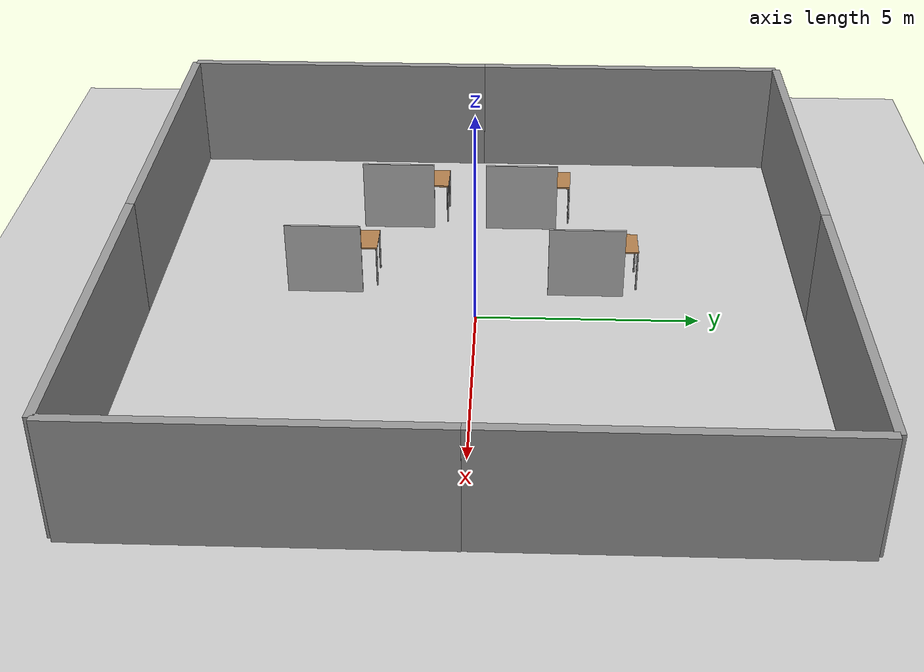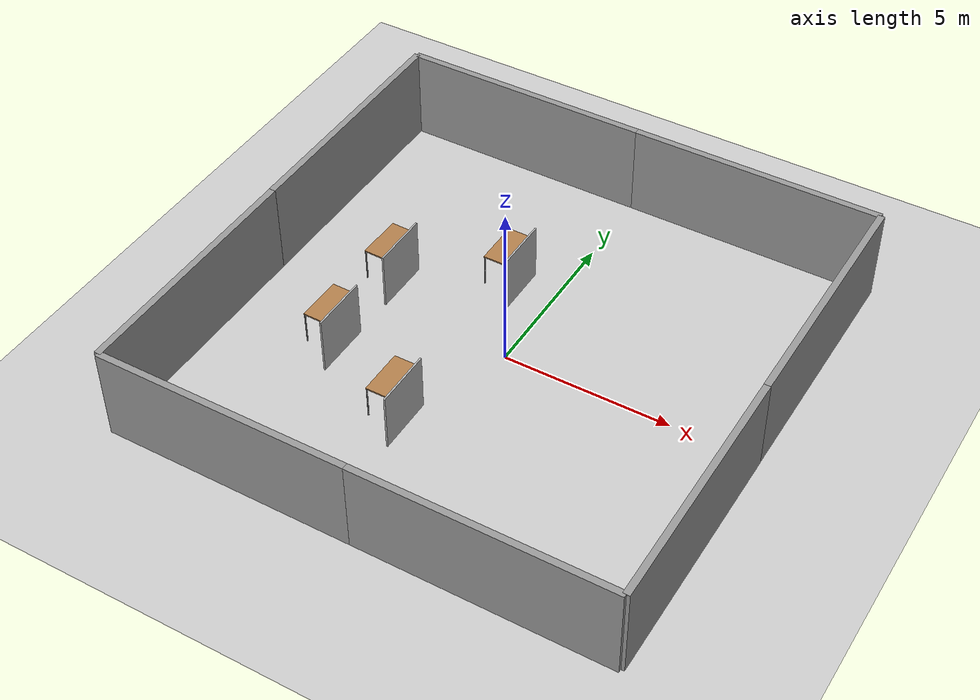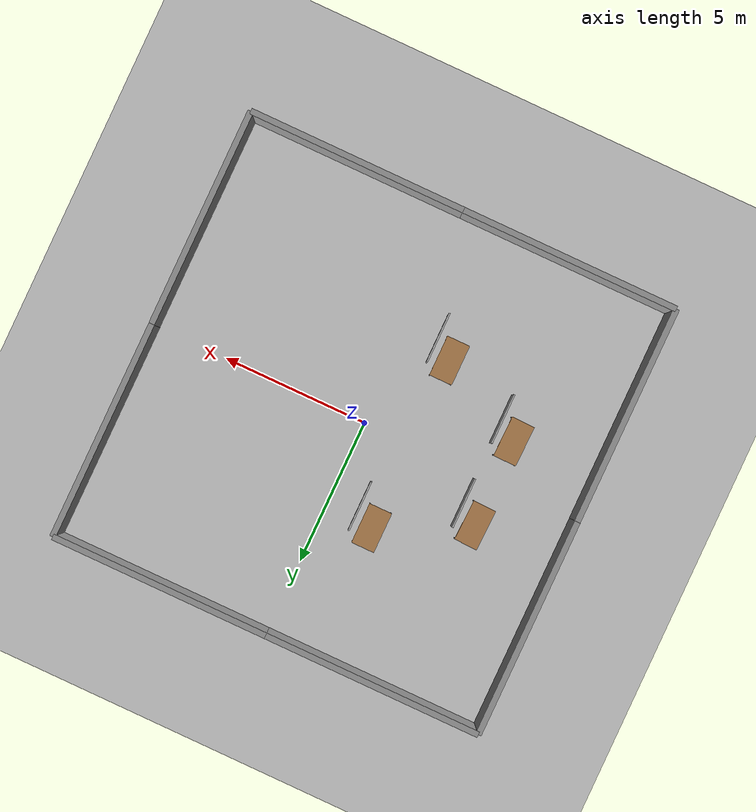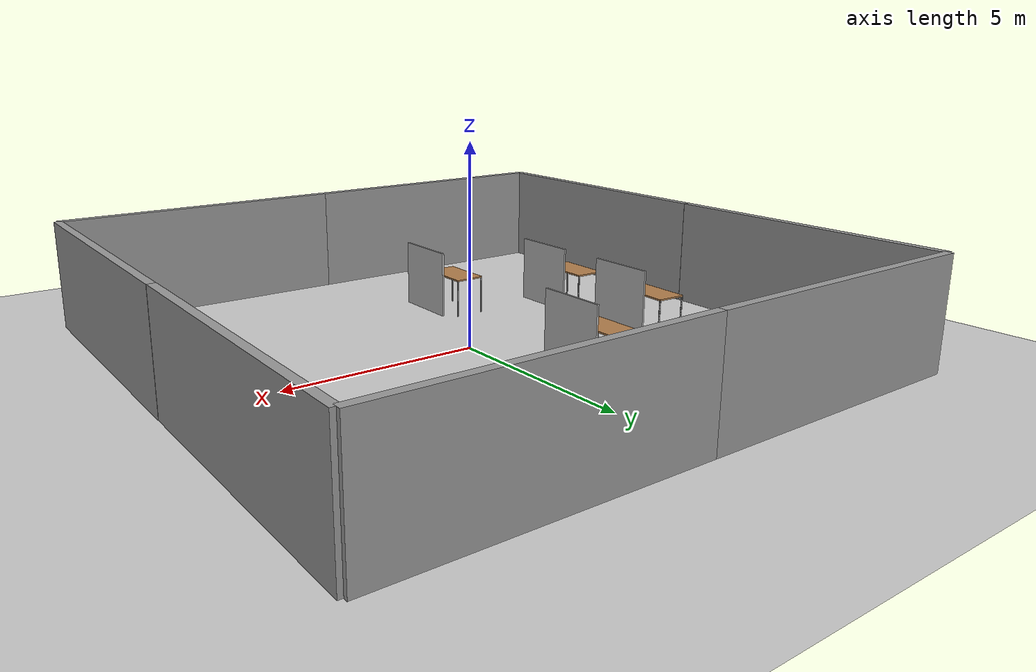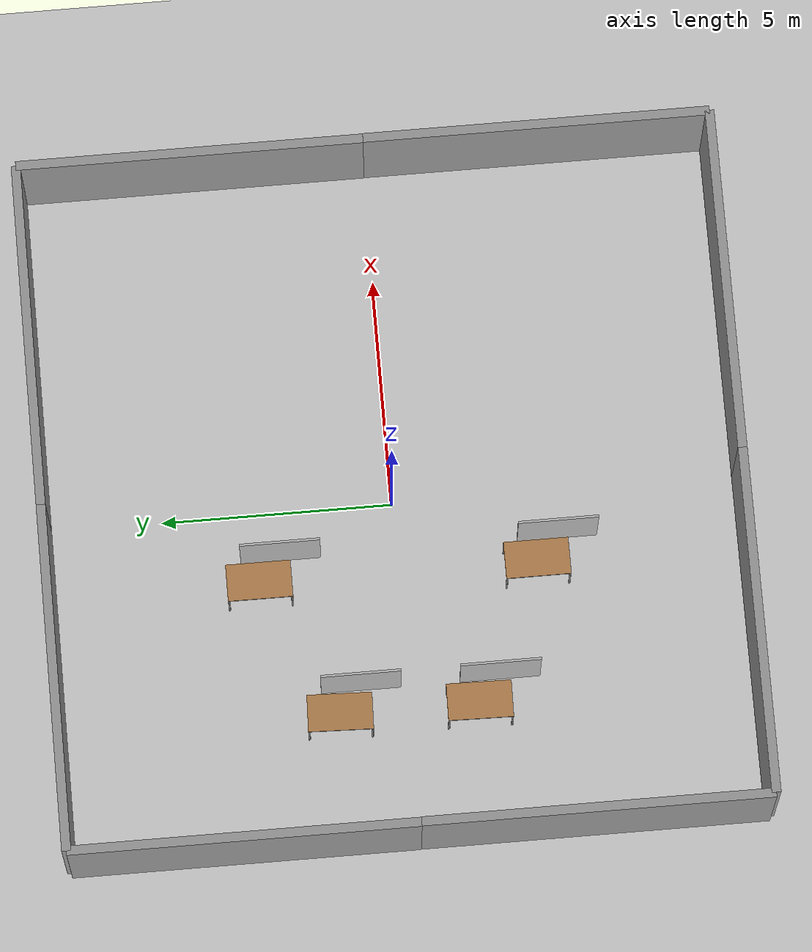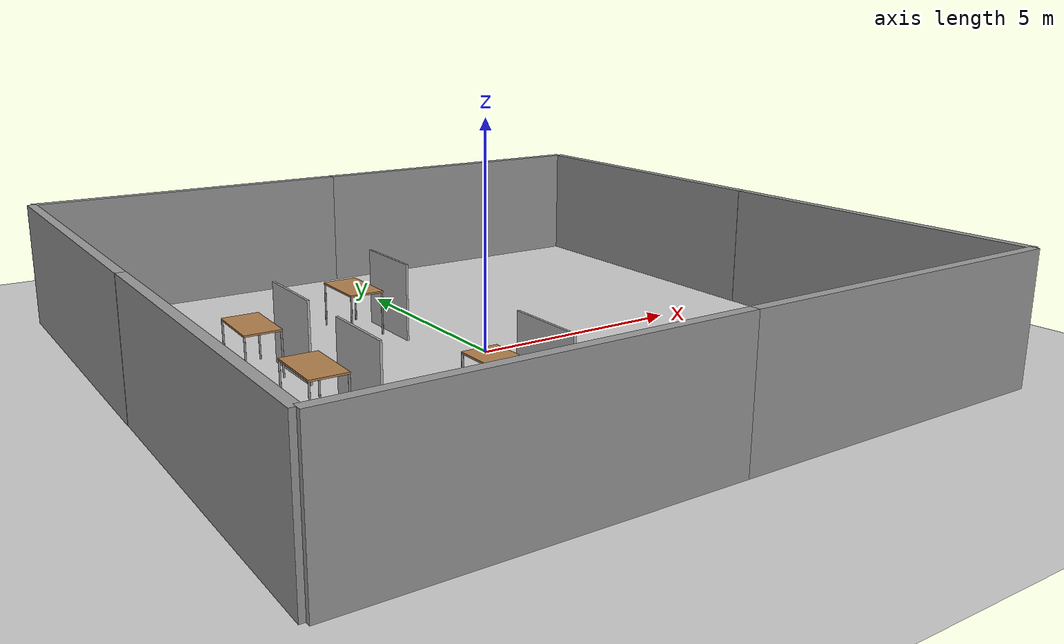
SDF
<sdf version="1.6">
 <world name="default">
  <light name="sun" type="directional">
   <pose>0 0 10 0 -0 0</pose>
   <diffuse>0.8 0.8 0.8 1</diffuse>
   <specular>0.1 0.1 0.1 1</specular>
   <attenuation>
    <range>1000</range>
    <constant>0.9</constant>
    <linear>0.01</linear>
    <quadratic>0.001</quadratic>
   </attenuation>
   <direction>-0.5 0.5 -1</direction>
  </light>
  <model name="ground_plane">
   <static>1</static>
   <link name="link">
    <collision name="collision">
     <geometry><plane><normal>0 0 1</normal><size>100 100</size></plane></geometry>
     <surface><friction><ode><mu>100</mu><mu2>50</mu2></ode></friction></surface>
    </collision>
    <visual name="visual">
     <cast_shadows>0</cast_shadows>
     <geometry><plane><normal>0 0 1</normal><size>100 100</size></plane></geometry>
     <material>
      <script><uri>file://media/materials/scripts/gazebo.material</uri><name>Gazebo/Grey</name></script>
     </material>
    </visual>
   </link>
  </model>
  <gravity>0 0 -9.8</gravity>
  <magnetic_field>6e-06 2.3e-05 -4.2e-05</magnetic_field>
  <atmosphere type="adiabatic"/>
  <physics name="default_physics" default="0" type="ode">
   <max_step_size>0.001</max_step_size>
   <real_time_factor>1</real_time_factor>
   <real_time_update_rate>1000</real_time_update_rate>
  </physics>
  <scene><ambient>0.4 0.4 0.4 1</ambient><background>0.7 0.7 0.7 1</background><shadows>1</shadows></scene>
  <spherical_coordinates>
   <surface_model>EARTH_WGS84</surface_model>
   <latitude_deg>0</latitude_deg>
   <longitude_deg>0</longitude_deg>
   <elevation>0</elevation>
   <heading_deg>0</heading_deg>
  </spherical_coordinates>
  <model name="grey_wall">
   <static>1</static>
   <link name="link">
    <pose>0 0 1.4 0 -0 0</pose>
    <collision name="collision"><geometry><box><size>7.5 0.2 2.8</size></box></geometry></collision>
    <visual name="visual">
     <cast_shadows>0</cast_shadows>
     <geometry><box><size>7.5 0.2 2.8</size></box></geometry>
     <material>
      <script>
       <uri>model://grey_wall/materials/scripts</uri>
       <uri>model://grey_wall/materials/textures</uri>
       <name>vrc/grey_wall</name>
      </script>
     </material>
    </visual>
   </link>
   <pose>3.75 7.5 0 0 -0 0</pose>
  </model>
  <model name="grey_wall_0">
   <static>1</static>
   <link name="link">
    <pose>0 0 1.4 0 -0 0</pose>
    <collision name="collision"><geometry><box><size>7.5 0.2 2.8</size></box></geometry></collision>
    <visual name="visual">
     <cast_shadows>0</cast_shadows>
     <geometry><box><size>7.5 0.2 2.8</size></box></geometry>
     <material>
      <script>
       <uri>model://grey_wall/materials/scripts</uri>
       <uri>model://grey_wall/materials/textures</uri>
       <name>vrc/grey_wall</name>
      </script>
     </material>
    </visual>
   </link>
   <pose>-3.75 7.5 0 0 -0 0</pose>
  </model>
  <model name="grey_wall_2">
   <static>1</static>
   <link name="link">
    <pose>0 0 1.4 0 -0 0</pose>
    <collision name="collision"><geometry><box><size>7.5 0.2 2.8</size></box></geometry></collision>
    <visual name="visual">
     <cast_shadows>0</cast_shadows>
     <geometry><box><size>7.5 0.2 2.8</size></box></geometry>
     <material>
      <script>
       <uri>model://grey_wall/materials/scripts</uri>
       <uri>model://grey_wall/materials/textures</uri>
       <name>vrc/grey_wall</name>
      </script>
     </material>
    </visual>
   </link>
   <pose>-3.75 -7.5 0 0 -0 0</pose>
  </model>
  <model name="grey_wall_3">
   <static>1</static>
   <link name="link">
    <pose>0 0 1.4 0 -0 0</pose>
    <collision name="collision"><geometry><box><size>7.5 0.2 2.8</size></box></geometry></collision>
    <visual name="visual">
     <cast_shadows>0</cast_shadows>
     <geometry><box><size>7.5 0.2 2.8</size></box></geometry>
     <material>
      <script>
       <uri>model://grey_wall/materials/scripts</uri>
       <uri>model://grey_wall/materials/textures</uri>
       <name>vrc/grey_wall</name>
      </script>
     </material>
    </visual>
   </link>
   <pose>3.75 -7.5 0 0 -0 0</pose>
  </model>
  <model name="grey_wall_4">
   <static>1</static>
   <link name="link">
    <pose>0 0 1.4 0 -0 0</pose>
    <collision name="collision"><geometry><box><size>7.5 0.2 2.8</size></box></geometry></collision>
    <visual name="visual">
     <cast_shadows>0</cast_shadows>
     <geometry><box><size>7.5 0.2 2.8</size></box></geometry>
     <material>
      <script>
       <uri>model://grey_wall/materials/scripts</uri>
       <uri>model://grey_wall/materials/textures</uri>
       <name>vrc/grey_wall</name>
      </script>
     </material>
    </visual>
   </link>
   <pose>-7.5 -3.75 0 0 -0 1.57</pose>
  </model>
  <model name="grey_wall_5">
   <static>1</static>
   <link name="link">
    <pose>0 0 1.4 0 -0 0</pose>
    <collision name="collision"><geometry><box><size>7.5 0.2 2.8</size></box></geometry></collision>
    <visual name="visual">
     <cast_shadows>0</cast_shadows>
     <geometry><box><size>7.5 0.2 2.8</size></box></geometry>
     <material>
      <script>
       <uri>model://grey_wall/materials/scripts</uri>
       <uri>model://grey_wall/materials/textures</uri>
       <name>vrc/grey_wall</name>
      </script>
     </material>
    </visual>
   </link>
   <pose>-7.5 3.75 0 0 -0 1.57</pose>
  </model>
  <model name="grey_wall_6">
   <static>1</static>
   <link name="link">
    <pose>0 0 1.4 0 -0 0</pose>
    <collision name="collision"><geometry><box><size>7.5 0.2 2.8</size></box></geometry></collision>
    <visual name="visual">
     <cast_shadows>0</cast_shadows>
     <geometry><box><size>7.5 0.2 2.8</size></box></geometry>
     <material>
      <script>
       <uri>model://grey_wall/materials/scripts</uri>
       <uri>model://grey_wall/materials/textures</uri>
       <name>vrc/grey_wall</name>
      </script>
     </material>
    </visual>
   </link>
   <pose>7.5 -3.75 0 0 -0 1.57</pose>
  </model>
  <model name="grey_wall_8">
   <static>1</static>
   <link name="link">
    <pose>0 0 1.4 0 -0 0</pose>
    <collision name="collision"><geometry><box><size>7.5 0.2 2.8</size></box></geometry></collision>
    <visual name="visual">
     <cast_shadows>0</cast_shadows>
     <geometry><box><size>7.5 0.2 2.8</size></box></geometry>
     <material>
      <script>
       <uri>model://grey_wall/materials/scripts</uri>
       <uri>model://grey_wall/materials/textures</uri>
       <name>vrc/grey_wall</name>
      </script>
     </material>
    </visual>
   </link>
   <pose>7.5 3.75 0 0 -0 1.57</pose>
  </model>
  <model name="table">
   <static>0</static>
   <link name="link">
    <collision name="surface">
     <pose>0 0 1 0 -0 0</pose>
     <geometry><box><size>1.5 0.8 0.03</size></box></geometry>
     <surface><friction><ode><mu>0.6</mu><mu2>0.6</mu2></ode></friction></surface>
    </collision>
    <visual name="visual1">
     <pose>0 0 1 0 -0 0</pose>
     <geometry><box><size>1.4 0.8 0.04</size></box></geometry>
     <material>
      <script><uri>file://media/materials/scripts/gazebo.material</uri><name>Gazebo/Wood</name></script>
     </material>
    </visual>
    <collision name="front_left_leg">
     <pose>0.68 0.38 0.5 0 -0 0</pose>
     <geometry><cylinder><radius>0.02</radius><length>1</length></cylinder></geometry>
    </collision>
    <visual name="front_left_leg">
     <pose>0.68 0.38 0.5 0 -0 0</pose>
     <geometry><cylinder><radius>0.02</radius><length>1</length></cylinder></geometry>
     <material>
      <script><uri>file://media/materials/scripts/gazebo.material</uri><name>Gazebo/Grey</name></script>
     </material>
    </visual>
    <collision name="front_right_leg">
     <pose>0.68 -0.38 0.5 0 -0 0</pose>
     <geometry><cylinder><radius>0.02</radius><length>1</length></cylinder></geometry>
    </collision>
    <visual name="front_right_leg">
     <pose>0.68 -0.38 0.5 0 -0 0</pose>
     <geometry><cylinder><radius>0.02</radius><length>1</length></cylinder></geometry>
     <material>
      <script><uri>file://media/materials/scripts/gazebo.material</uri><name>Gazebo/Grey</name></script>
     </material>
    </visual>
    <collision name="back_right_leg">
     <pose>-0.68 -0.38 0.5 0 -0 0</pose>
     <geometry><cylinder><radius>0.02</radius><length>1</length></cylinder></geometry>
    </collision>
    <visual name="back_right_leg">
     <pose>-0.68 -0.38 0.5 0 -0 0</pose>
     <geometry><cylinder><radius>0.02</radius><length>1</length></cylinder></geometry>
     <material>
      <script><uri>file://media/materials/scripts/gazebo.material</uri><name>Gazebo/Grey</name></script>
     </material>
    </visual>
    <collision name="back_left_leg">
     <pose>-0.68 0.38 0.5 0 -0 0</pose>
     <geometry><cylinder><radius>0.02</radius><length>1</length></cylinder></geometry>
    </collision>
    <visual name="back_left_leg">
     <pose>-0.68 0.38 0.5 0 -0 0</pose>
     <geometry><cylinder><radius>0.02</radius><length>1</length></cylinder></geometry>
     <material>
      <script><uri>file://media/materials/scripts/gazebo.material</uri><name>Gazebo/Grey</name></script>
     </material>
    </visual>
    <inertial>
     <inertia><ixx>1</ixx><ixy>0</ixy><ixz>0</ixz><iyy>1</iyy><iyz>0</iyz><izz>1</izz></inertia>
     <mass>1</mass>
    </inertial>
   </link>
   <pose>-1.65012 -3.00004 -4e-06 -3e-06 1e-06 1.57098</pose>
  </model>
  <model name="table_0">
   <static>0</static>
   <link name="link">
    <collision name="surface">
     <pose>0 0 1 0 -0 0</pose>
     <geometry><box><size>1.5 0.8 0.03</size></box></geometry>
     <surface><friction><ode><mu>0.6</mu><mu2>0.6</mu2></ode></friction></surface>
    </collision>
    <visual name="visual1">
     <pose>0 0 1 0 -0 0</pose>
     <geometry><box><size>1.4 0.8 0.04</size></box></geometry>
     <material>
      <script><uri>file://media/materials/scripts/gazebo.material</uri><name>Gazebo/Wood</name></script>
     </material>
    </visual>
    <collision name="front_left_leg">
     <pose>0.68 0.38 0.5 0 -0 0</pose>
     <geometry><cylinder><radius>0.02</radius><length>1</length></cylinder></geometry>
    </collision>
    <visual name="front_left_leg">
     <pose>0.68 0.38 0.5 0 -0 0</pose>
     <geometry><cylinder><radius>0.02</radius><length>1</length></cylinder></geometry>
     <material>
      <script><uri>file://media/materials/scripts/gazebo.material</uri><name>Gazebo/Grey</name></script>
     </material>
    </visual>
    <collision name="front_right_leg">
     <pose>0.68 -0.38 0.5 0 -0 0</pose>
     <geometry><cylinder><radius>0.02</radius><length>1</length></cylinder></geometry>
    </collision>
    <visual name="front_right_leg">
     <pose>0.68 -0.38 0.5 0 -0 0</pose>
     <geometry><cylinder><radius>0.02</radius><length>1</length></cylinder></geometry>
     <material>
      <script><uri>file://media/materials/scripts/gazebo.material</uri><name>Gazebo/Grey</name></script>
     </material>
    </visual>
    <collision name="back_right_leg">
     <pose>-0.68 -0.38 0.5 0 -0 0</pose>
     <geometry><cylinder><radius>0.02</radius><length>1</length></cylinder></geometry>
    </collision>
    <visual name="back_right_leg">
     <pose>-0.68 -0.38 0.5 0 -0 0</pose>
     <geometry><cylinder><radius>0.02</radius><length>1</length></cylinder></geometry>
     <material>
      <script><uri>file://media/materials/scripts/gazebo.material</uri><name>Gazebo/Grey</name></script>
     </material>
    </visual>
    <collision name="back_left_leg">
     <pose>-0.68 0.38 0.5 0 -0 0</pose>
     <geometry><cylinder><radius>0.02</radius><length>1</length></cylinder></geometry>
    </collision>
    <visual name="back_left_leg">
     <pose>-0.68 0.38 0.5 0 -0 0</pose>
     <geometry><cylinder><radius>0.02</radius><length>1</length></cylinder></geometry>
     <material>
      <script><uri>file://media/materials/scripts/gazebo.material</uri><name>Gazebo/Grey</name></script>
     </material>
    </visual>
    <inertial>
     <inertia><ixx>1</ixx><ixy>0</ixy><ixz>0</ixz><iyy>1</iyy><iyz>0</iyz><izz>1</izz></inertia>
     <mass>1</mass>
    </inertial>
   </link>
   <pose>-4.65206 -1.49912 0.001594 -0.003985 -0 1.55405</pose>
  </model>
  <model name="table_1">
   <static>0</static>
   <link name="link">
    <collision name="surface">
     <pose>0 0 1 0 -0 0</pose>
     <geometry><box><size>1.5 0.8 0.03</size></box></geometry>
     <surface><friction><ode><mu>0.6</mu><mu2>0.6</mu2></ode></friction></surface>
    </collision>
    <visual name="visual1">
     <pose>0 0 1 0 -0 0</pose>
     <geometry><box><size>1.4 0.8 0.04</size></box></geometry>
     <material>
      <script><uri>file://media/materials/scripts/gazebo.material</uri><name>Gazebo/Wood</name></script>
     </material>
    </visual>
    <collision name="front_left_leg">
     <pose>0.68 0.38 0.5 0 -0 0</pose>
     <geometry><cylinder><radius>0.02</radius><length>1</length></cylinder></geometry>
    </collision>
    <visual name="front_left_leg">
     <pose>0.68 0.38 0.5 0 -0 0</pose>
     <geometry><cylinder><radius>0.02</radius><length>1</length></cylinder></geometry>
     <material>
      <script><uri>file://media/materials/scripts/gazebo.material</uri><name>Gazebo/Grey</name></script>
     </material>
    </visual>
    <collision name="front_right_leg">
     <pose>0.68 -0.38 0.5 0 -0 0</pose>
     <geometry><cylinder><radius>0.02</radius><length>1</length></cylinder></geometry>
    </collision>
    <visual name="front_right_leg">
     <pose>0.68 -0.38 0.5 0 -0 0</pose>
     <geometry><cylinder><radius>0.02</radius><length>1</length></cylinder></geometry>
     <material>
      <script><uri>file://media/materials/scripts/gazebo.material</uri><name>Gazebo/Grey</name></script>
     </material>
    </visual>
    <collision name="back_right_leg">
     <pose>-0.68 -0.38 0.5 0 -0 0</pose>
     <geometry><cylinder><radius>0.02</radius><length>1</length></cylinder></geometry>
    </collision>
    <visual name="back_right_leg">
     <pose>-0.68 -0.38 0.5 0 -0 0</pose>
     <geometry><cylinder><radius>0.02</radius><length>1</length></cylinder></geometry>
     <material>
      <script><uri>file://media/materials/scripts/gazebo.material</uri><name>Gazebo/Grey</name></script>
     </material>
    </visual>
    <collision name="back_left_leg">
     <pose>-0.68 0.38 0.5 0 -0 0</pose>
     <geometry><cylinder><radius>0.02</radius><length>1</length></cylinder></geometry>
    </collision>
    <visual name="back_left_leg">
     <pose>-0.68 0.38 0.5 0 -0 0</pose>
     <geometry><cylinder><radius>0.02</radius><length>1</length></cylinder></geometry>
     <material>
      <script><uri>file://media/materials/scripts/gazebo.material</uri><name>Gazebo/Grey</name></script>
     </material>
    </visual>
    <inertial>
     <inertia><ixx>1</ixx><ixy>0</ixy><ixz>0</ixz><iyy>1</iyy><iyz>0</iyz><izz>1</izz></inertia>
     <mass>1</mass>
    </inertial>
   </link>
   <pose>-1.6508 3 -9e-06 -1e-06 1e-06 1.56965</pose>
  </model>
  <model name="table_2">
   <static>0</static>
   <link name="link">
    <collision name="surface">
     <pose>0 0 1 0 -0 0</pose>
     <geometry><box><size>1.5 0.8 0.03</size></box></geometry>
     <surface><friction><ode><mu>0.6</mu><mu2>0.6</mu2></ode></friction></surface>
    </collision>
    <visual name="visual1">
     <pose>0 0 1 0 -0 0</pose>
     <geometry><box><size>1.4 0.8 0.04</size></box></geometry>
     <material>
      <script><uri>file://media/materials/scripts/gazebo.material</uri><name>Gazebo/Wood</name></script>
     </material>
    </visual>
    <collision name="front_left_leg">
     <pose>0.68 0.38 0.5 0 -0 0</pose>
     <geometry><cylinder><radius>0.02</radius><length>1</length></cylinder></geometry>
    </collision>
    <visual name="front_left_leg">
     <pose>0.68 0.38 0.5 0 -0 0</pose>
     <geometry><cylinder><radius>0.02</radius><length>1</length></cylinder></geometry>
     <material>
      <script><uri>file://media/materials/scripts/gazebo.material</uri><name>Gazebo/Grey</name></script>
     </material>
    </visual>
    <collision name="front_right_leg">
     <pose>0.68 -0.38 0.5 0 -0 0</pose>
     <geometry><cylinder><radius>0.02</radius><length>1</length></cylinder></geometry>
    </collision>
    <visual name="front_right_leg">
     <pose>0.68 -0.38 0.5 0 -0 0</pose>
     <geometry><cylinder><radius>0.02</radius><length>1</length></cylinder></geometry>
     <material>
      <script><uri>file://media/materials/scripts/gazebo.material</uri><name>Gazebo/Grey</name></script>
     </material>
    </visual>
    <collision name="back_right_leg">
     <pose>-0.68 -0.38 0.5 0 -0 0</pose>
     <geometry><cylinder><radius>0.02</radius><length>1</length></cylinder></geometry>
    </collision>
    <visual name="back_right_leg">
     <pose>-0.68 -0.38 0.5 0 -0 0</pose>
     <geometry><cylinder><radius>0.02</radius><length>1</length></cylinder></geometry>
     <material>
      <script><uri>file://media/materials/scripts/gazebo.material</uri><name>Gazebo/Grey</name></script>
     </material>
    </visual>
    <collision name="back_left_leg">
     <pose>-0.68 0.38 0.5 0 -0 0</pose>
     <geometry><cylinder><radius>0.02</radius><length>1</length></cylinder></geometry>
    </collision>
    <visual name="back_left_leg">
     <pose>-0.68 0.38 0.5 0 -0 0</pose>
     <geometry><cylinder><radius>0.02</radius><length>1</length></cylinder></geometry>
     <material>
      <script><uri>file://media/materials/scripts/gazebo.material</uri><name>Gazebo/Grey</name></script>
     </material>
    </visual>
    <inertial>
     <inertia><ixx>1</ixx><ixy>0</ixy><ixz>0</ixz><iyy>1</iyy><iyz>0</iyz><izz>1</izz></inertia>
     <mass>1</mass>
    </inertial>
   </link>
   <pose>-4.65154 1.5012 0.004123 -0.010307 1e-06 1.5385</pose>
  </model>
  <model name="marker3">
   <link name="box">
    <pose>0 0 0 0 -0 1.5707</pose>
    <collision name="collision"><geometry><box><size>1.7328 0.05 1.7424</size></box></geometry></collision>
    <visual name="visual">
     <geometry><box><size>1.7328 0.05 1.7424</size></box></geometry>
     <material>
      <script>
       <uri>model:///home/beta/catkin_ws/src/project_simulation/models/marker/materials/scripts</uri>
       <uri>model:///home/beta/catkin_ws/src/project_simulation/models/marker/materials/textures</uri>
       <name>Markers/Marker3</name>
      </script>
     </material>
    </visual>
    <inertial>
     <inertia><ixx>1</ixx><ixy>0</ixy><ixz>0</ixz><iyy>1</iyy><iyz>0</iyz><izz>1</izz></inertia>
     <mass>1</mass>
    </inertial>
    <kinematic>1</kinematic>
   </link>
   <pose>-1 -3.5 0.859998 4e-06 -2e-06 0.00024</pose>
  </model>
  <model name="marker4">
   <link name="box">
    <pose>0 0 0 0 -0 1.5707</pose>
    <collision name="collision"><geometry><box><size>1.7328 0.05 1.7424</size></box></geometry></collision>
    <visual name="visual">
     <geometry><box><size>1.7328 0.05 1.7424</size></box></geometry>
     <material>
      <script>
       <uri>model:///home/beta/catkin_ws/src/project_simulation/models/marker/materials/scripts</uri>
       <uri>model:///home/beta/catkin_ws/src/project_simulation/models/marker/materials/textures</uri>
       <name>Markers/Marker4</name>
      </script>
     </material>
    </visual>
    <inertial>
     <inertia><ixx>1</ixx><ixy>0</ixy><ixz>0</ixz><iyy>1</iyy><iyz>0</iyz><izz>1</izz></inertia>
     <mass>1</mass>
    </inertial>
    <kinematic>1</kinematic>
   </link>
   <pose>-1 2.5 0.86 0 -0 0</pose>
  </model>
  <model name="marker1">
   <link name="box">
    <pose>0 0 0 0 -0 1.5707</pose>
    <collision name="collision"><geometry><box><size>1.7328 0.05 1.7424</size></box></geometry></collision>
    <visual name="visual">
     <geometry><box><size>1.7328 0.05 1.7424</size></box></geometry>
     <material>
      <script>
       <uri>model:///home/beta/catkin_ws/src/project_simulation/models/marker/materials/scripts</uri>
       <uri>model:///home/beta/catkin_ws/src/project_simulation/models/marker/materials/textures</uri>
       <name>Markers/Marker1</name>
      </script>
     </material>
    </visual>
    <inertial>
     <inertia><ixx>1</ixx><ixy>0</ixy><ixz>0</ixz><iyy>1</iyy><iyz>0</iyz><izz>1</izz></inertia>
     <mass>1</mass>
    </inertial>
    <kinematic>1</kinematic>
   </link>
   <pose>-4 1 0.86 0 -0 0</pose>
  </model>
  <model name="marker2">
   <link name="box">
    <pose>0 0 0 0 -0 1.5707</pose>
    <collision name="collision"><geometry><box><size>1.7328 0.05 1.7424</size></box></geometry></collision>
    <visual name="visual">
     <geometry><box><size>1.7328 0.05 1.7424</size></box></geometry>
     <material>
      <script>
       <uri>model:///home/beta/catkin_ws/src/project_simulation/models/marker/materials/scripts</uri>
       <uri>model:///home/beta/catkin_ws/src/project_simulation/models/marker/materials/textures</uri>
       <name>Markers/Marker2</name>
      </script>
     </material>
    </visual>
    <inertial>
     <inertia><ixx>1</ixx><ixy>0</ixy><ixz>0</ixz><iyy>1</iyy><iyz>0</iyz><izz>1</izz></inertia>
     <mass>1</mass>
    </inertial>
    <kinematic>1</kinematic>
   </link>
   <pose>-4 -2 0.86 0 2e-06 0</pose>
  </model>
  <plugin name="GazeboPlugin" filename="/home/beta/src/GazeboPlugin/export/lib/libGazeboCoSimPlugin.so">
   <portNumber>14581</portNumber>
  </plugin>
 </world>
</sdf>
